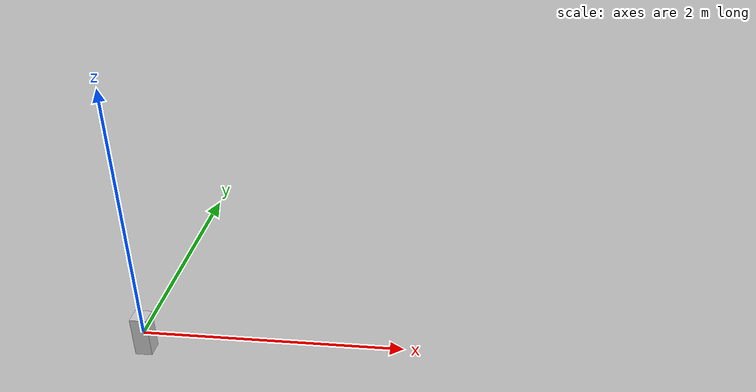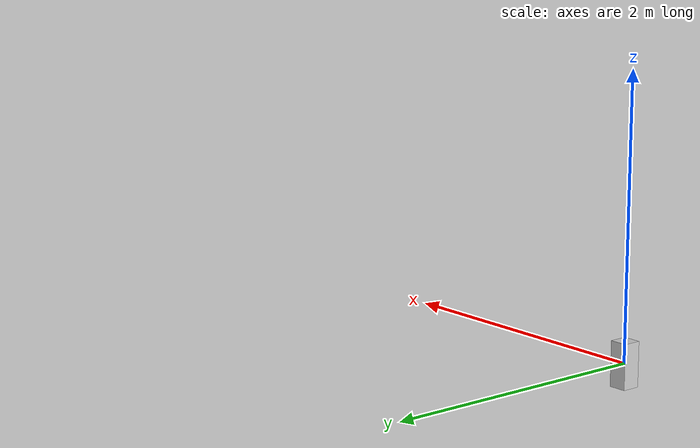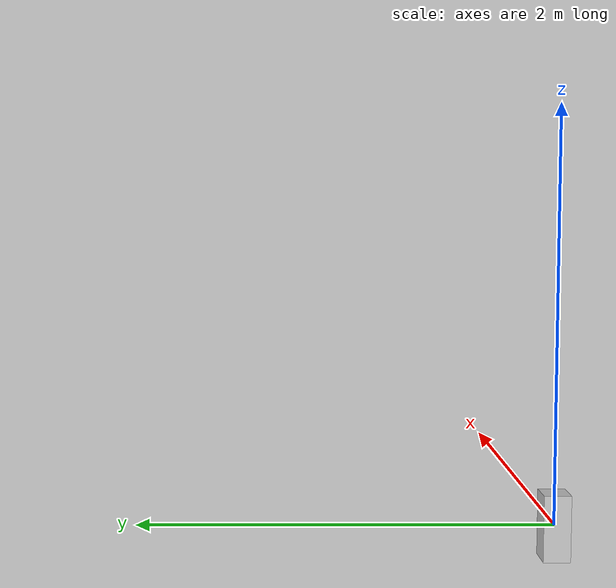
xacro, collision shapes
<?xml version="1.0"?>
<robot name="robotic_arm" xmlns:xacro="http://www.ros.org/wiki/xacro">
  <xacro:property name="mesh_package" value="package://rover_arm/meshes/" />

  <!-- Material Definitions -->
  <material name="mat_silver">
    <color rgba="0.8 0.8 0.8 1"/>
  </material>
  <link name="world" />
  <!-- Base Link -->
  <link name="base_link">
    <inertial>
      <mass value="10"/>
      <inertia ixx="0.05" ixy="0" ixz="0" iyy="0.05" iyz="0" izz="0.1"/>
    </inertial>
    <visual>
      <origin xyz="0 0 0.07" rpy="3.1415 0 0"/>
      <geometry>
        <mesh filename="${mesh_package}Joint1.stl" scale="1 1 1"/>
      </geometry>
      <material name="mat_silver"/>
    </visual>
    <visual>
      <origin xyz="0.03 0.017 0.23" rpy="-1.5707 0.16 0"/>
      <geometry>
        <mesh filename="${mesh_package}Connector1.stl" scale="1 1 1"/>
      </geometry>
      <material name="mat_silver"/>
    </visual>

    <collision>
      <origin xyz="0 0 0" rpy="0 0 0"/>
      <geometry>
        <box size="0.13 0.13 0.32"/>
      </geometry>
    </collision>
  </link>
  <link name="link1">
    <!-- Has joint 2, link 1, and connector 2; is controlled by a revolute joint of pi freedom on y or x axis (tbd). -->
    <visual>
        <origin xyz="0 0 0" rpy="-1.568 1.22 0 " />
        <geometry>
            <mesh filename="${mesh_package}Joint2.stl" scale="1 1 1"/>
        </geometry>
        <material name="mat_silver" />
    </visual>
    <visual>
        <origin xyz="0 0.01 0.19" rpy="-1.56 0 0" />
        <geometry>
            <mesh filename="${mesh_package}Link1.stl" scale="1 1 1"/>
        </geometry>
        <material name="mat_silver" />
    </visual>
    <visual>
        <origin xyz="0 0 0.363" rpy="1.568 0 0" />
        <geometry>
            <mesh filename="${mesh_package}Connector2.stl" scale="1 1 1"/>
        </geometry>
        <material name="mat_silver" />
    </visual>
    <collision>
        <origin xyz="4 2 1" rpy="0 0 0" />
        <geometry>
            <cylinder length="0" radius="0" />
        </geometry>
    </collision>
    <inertial>
        <mass value="0.1" />
        <origin xyz="0 0 0" rpy="0 0 0" />
        <inertia ixx="0.03" iyy="0.03" izz="0.03" ixy="0.0" ixz="0.0" iyz="0.0" />
    </inertial>
</link>
<link name="link2">
        <!-- Has joint 3, link 2 and connector 3, is controlled by a revolute joint of pi freedom on y or x axis (tbd). -->
    <visual>
      <origin xyz="0.01 0.1 0" rpy="1.57 -0.22 0" />
      <geometry>
        <mesh filename="${mesh_package}Joint3.stl" scale="1 1 1"/>
      </geometry>
      <material name="mat_silver" />
  </visual>
    <visual>
       <origin xyz="0.14 0.09 0" rpy="0 0 1.56" />
      <geometry>
        <mesh filename="${mesh_package}Link2.stl" scale="1 1 1"/>
      </geometry>
       <material name="mat_silver" />
   </visual>
    <visual>
      <origin xyz="0.26 0.07 0" rpy="1.55 -1.38 0" />
      <geometry>
         <mesh filename="${mesh_package}Connector3.stl" scale="1 1 1"/>
      </geometry>
       <material name="mat_silver" />
   </visual>
  <collision>
      <origin xyz="1.45 0 0" rpy="0 1.5707 0" />
       <geometry>
           <cylinder length="0" radius="0" />
      </geometry>
   </collision>
  <inertial>
      <mass value="0.1" />
      <origin xyz="0 0 0" rpy="0 0 0" />
      <inertia ixx="0.03" iyy="0.03" izz="0.03" ixy="0.0" ixz="0.0" iyz="0.0" />
  </inertial>
</link>
<link name="link3">
        <!-- Has joint 4 and a possible end effector, is controlled by a revolute joint of pi freedom on x or y axis (tbd).-->

    <visual>
       <origin xyz="-0.39 0 0.194" rpy="1.557 2 0" />
       <geometry>
        <mesh filename="${mesh_package}Joint4.stl" scale="1 1 1"/>
      </geometry>
       <material name="mat_silver" />
  </visual>
  <collision>
       <origin xyz="0 0 0" rpy="0 1.5707 0" />
       <geometry>
          <cylinder length="0" radius="0" />
      </geometry>
  </collision>
  <inertial>
      <mass value="0.1" />
      <origin xyz="0 0 0" rpy="0 0 0" />
      <inertia ixx="0.03" iyy="0.03" izz="0.03" ixy="0.0" ixz="0.0" iyz="0.0" />
  </inertial>
</link>

<joint name="joint1" type="continuous">
        <parent link="world" />
        <child link="base_link" />
        <origin xyz="0 0 0" rpy="0 0 0" />
        <axis xyz="0 0 1" />
        <limit velocity="100" effort="100" />
</joint>
<joint name="joint2" type="revolute">
        <parent link="base_link" />
        <child link="link1" />
        <origin xyz="0.03 0.18 0.24" rpy="0 0 0" />
        <axis xyz="0 -1 0" />
        <limit lower="-1.5707" upper="0" velocity="100" effort="100" />
</joint>
<joint name="joint3" type="revolute">
        <parent link="link1" />
        <child link="link2" />
        <origin xyz="0 -0.24 0.37" rpy="0 0 0" />
        <axis xyz="0 1 0" />
        <limit lower="0" upper="1.5707" velocity="100" effort="100" />
    </joint>
 <joint name="joint4" type="revolute">
        <parent link="link2" />
        <child link="link3" />
        <origin xyz="0.25 0.2 0" rpy="0 0 0" />
        <axis xyz="0 1 0" />
        <limit lower="-1.5707" upper="0" velocity="100" effort="100" />
    </joint>
   <plugin name="gazebo_ros_control">
            <robotNamespace>/</robotNamespace>
        </plugin>
    <gazebo reference="base_link">
        <material>Gazebo/Green</material>

    </gazebo>
    <gazebo reference="link1">
        <material>Gazebo/Blue</material>
    </gazebo>
    <gazebo reference="link2">
        <material>Gazebo/Orange</material>
    </gazebo>
    <gazebo reference="link3">
        <material>Gazebo/Red</material>
    </gazebo>
   <gazebo>
    <plugin name="gazebo_ros_control" filename="libgazebo_ros_control.so">
      <robotNamespace>/robotic_arm</robotNamespace>
    </plugin>
  </gazebo>
    <gazebo>
        <plugin name="gazebo_ros_joint_state_publisher" filename="libgazebo_ros_joint_state_publisher.so">
            <update_rate>20</update_rate>
            <joint_name>joint1</joint_name>
            <joint_name>joint2</joint_name>
            <joint_name>joint3</joint_name>
            <joint_name>joint4</joint_name>
        </plugin>
    </gazebo>
   <gazebo>
        <plugin name="gazebo_ros_joint_pose_trajectory" filename="libgazebo_ros_joint_pose_trajectory.so">
            <update_rate>2</update_rate>
        </plugin>
    </gazebo>
    <transmission name="trans_joint1">
        <type>transmission_interface/SimpleTransmission</type>
        <joint name="joint1">
            <hardwareInterface>hardware_interface/PositionJointInterface</hardwareInterface>
        </joint>
        <actuator name="joint1_motor">
            <hardwareInterface>hardware_interface/PositionJointInterface</hardwareInterface>
            <mechanicalReduction>1</mechanicalReduction>
        </actuator>
    </transmission>
    <transmission name="trans_joint2">
        <type>transmission_interface/SimpleTransmission</type>
        <joint name="joint2">
            <hardwareInterface>hardware_interface/PositionJointInterface</hardwareInterface>
        </joint>
        <actuator name="joint2_motor">
            <hardwareInterface>hardware_interface/PositionJointInterface</hardwareInterface>
            <mechanicalReduction>1</mechanicalReduction>
        </actuator>
    </transmission>
    <transmission name="trans_joint3">
        <type>transmission_interface/SimpleTransmission</type>
        <joint name="joint3">
            <hardwareInterface>hardware_interface/PositionJointInterface</hardwareInterface>
        </joint>
        <actuator name="joint3_motor">
            <hardwareInterface>hardware_interface/PositionJointInterface</hardwareInterface>
            <mechanicalReduction>1</mechanicalReduction>
        </actuator>
    </transmission>
    <transmission name="trans_joint4">
        <type>transmission_interface/SimpleTransmission</type>
        <joint name="joint4">
            <hardwareInterface>hardware_interface/EffortJointInterface</hardwareInterface>
        </joint>
        <actuator name="joint4_motor">
            <hardwareInterface>hardware_interface/EffortJointInterface</hardwareInterface>
            <mechanicalReduction>1</mechanicalReduction>
        </actuator>
    </transmission>

  </robot>
